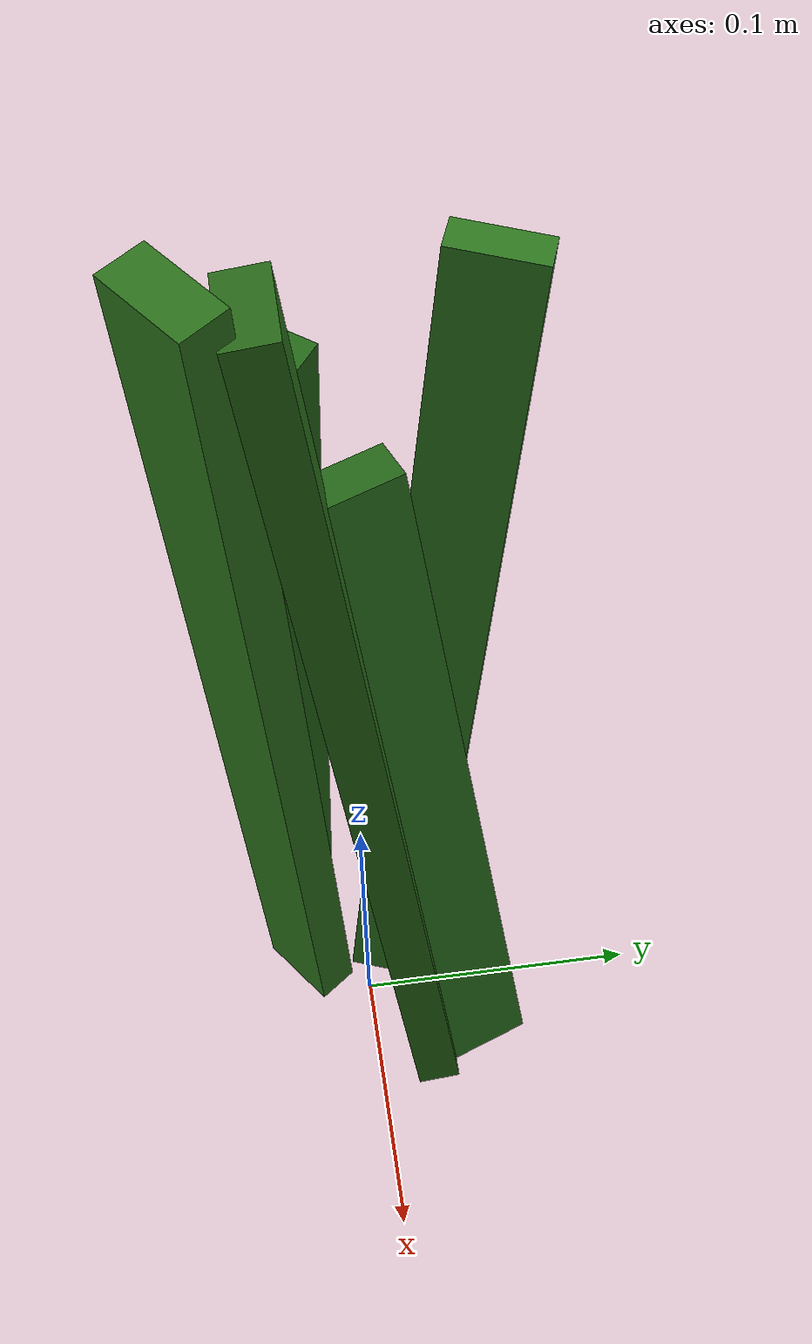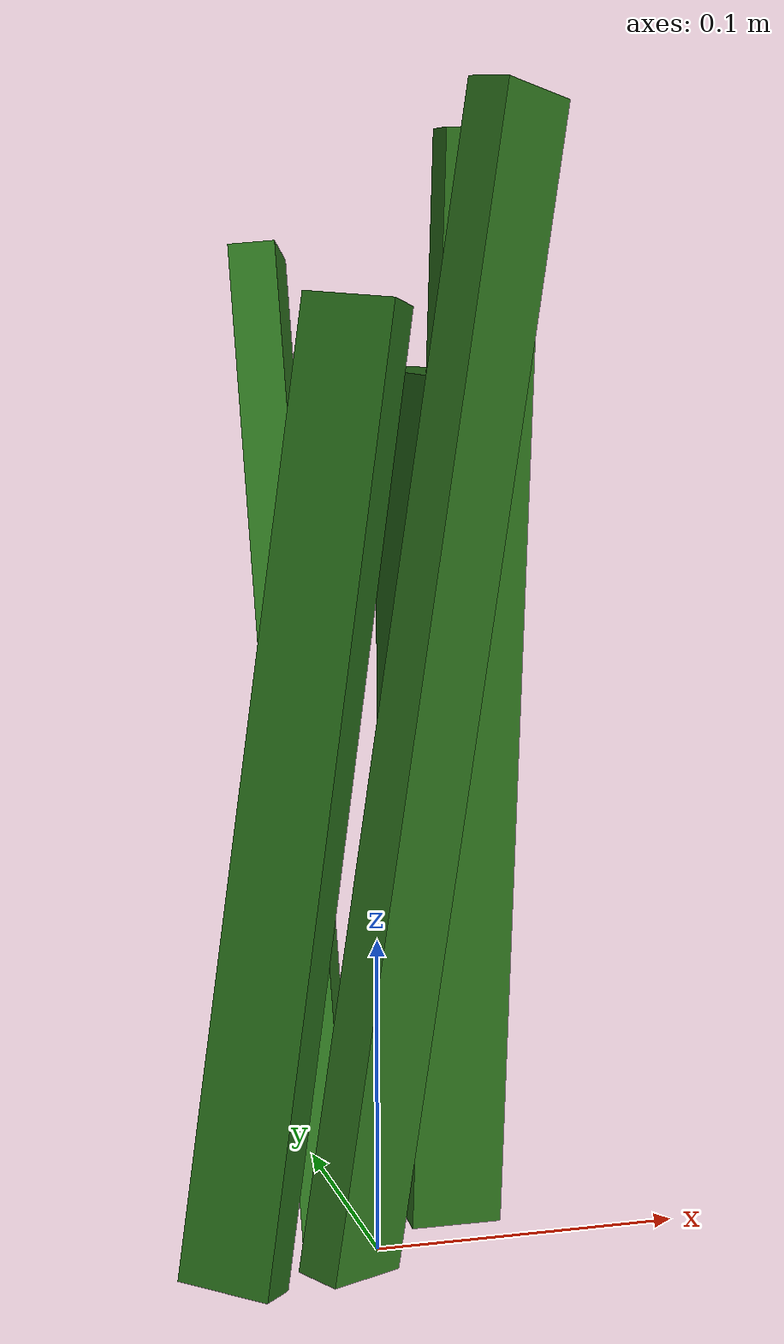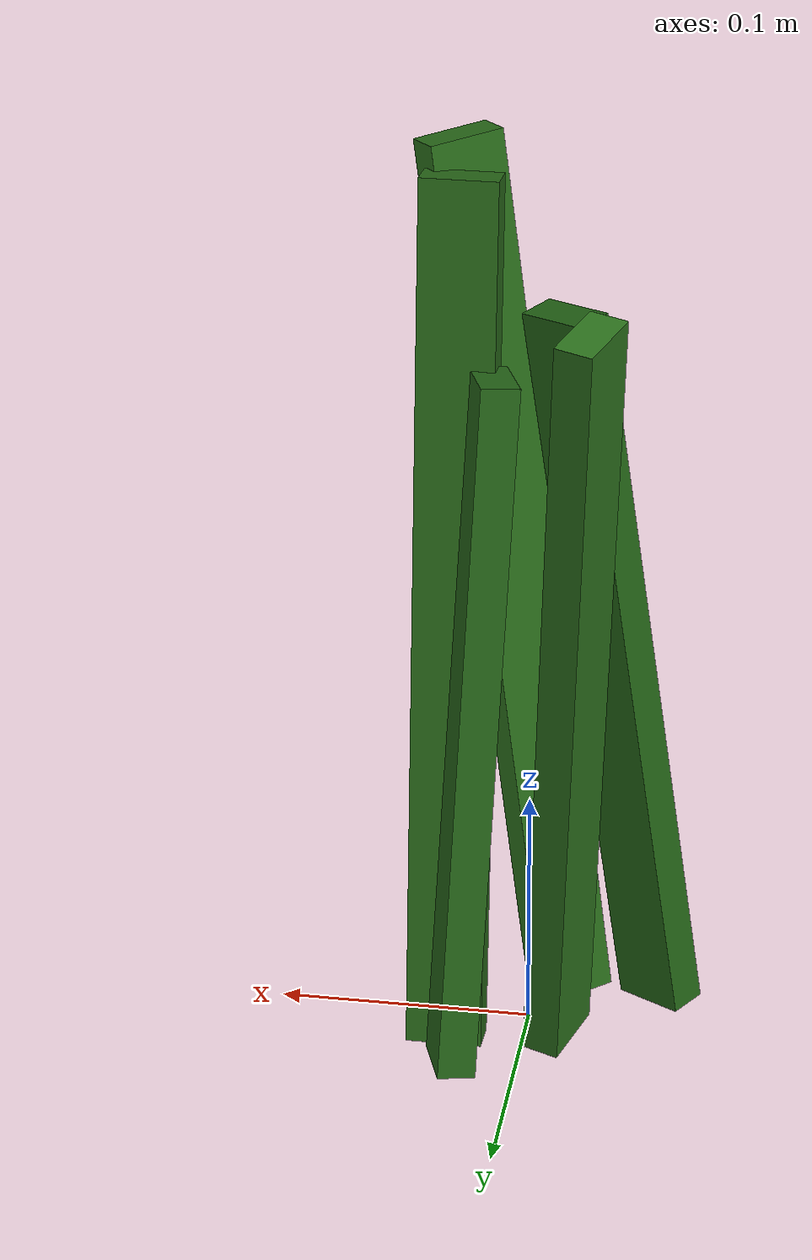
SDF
<?xml version="1.0"?>
<sdf version="1.10"><model name="grass"><static>false</static><link name="tuft">
  <inertial><mass>0.05</mass><inertia><ixx>0.00056</ixx><iyy>0.00056</iyy><izz>0.00036</izz></inertia></inertial>
  <collision name="collision"><pose>0 0 0.015 0 0 0</pose><geometry><cylinder><radius>0.11</radius><length>0.03</length></cylinder></geometry><surface><friction><ode><mu>1.3</mu><mu2>1.1</mu2></ode></friction></surface></collision>
  <visual name="blade_1"><pose>0.03 0 0.175 0.12 0 0</pose><geometry><box><size>0.03 0.015 0.35</size></box></geometry><material><diffuse>0.16 0.42 0.10 1</diffuse></material></visual>
  <visual name="blade_2"><pose>-0.02 0.03 0.16 -0.08 0.1 1.256</pose><geometry><box><size>0.03 0.015 0.32</size></box></geometry><material><diffuse>0.18 0.46 0.12 1</diffuse></material></visual>
  <visual name="blade_3"><pose>-0.03 -0.02 0.15 0.1 -0.1 2.513</pose><geometry><box><size>0.03 0.015 0.30</size></box></geometry><material><diffuse>0.14 0.40 0.09 1</diffuse></material></visual>
  <visual name="blade_4"><pose>0.01 -0.03 0.18 -0.12 -0.08 3.77</pose><geometry><box><size>0.03 0.015 0.36</size></box></geometry><material><diffuse>0.17 0.44 0.11 1</diffuse></material></visual>
  <visual name="blade_5"><pose>0.02 0.02 0.14 0.08 0.12 5.03</pose><geometry><box><size>0.03 0.015 0.28</size></box></geometry><material><diffuse>0.15 0.41 0.10 1</diffuse></material></visual>
</link></model></sdf>
